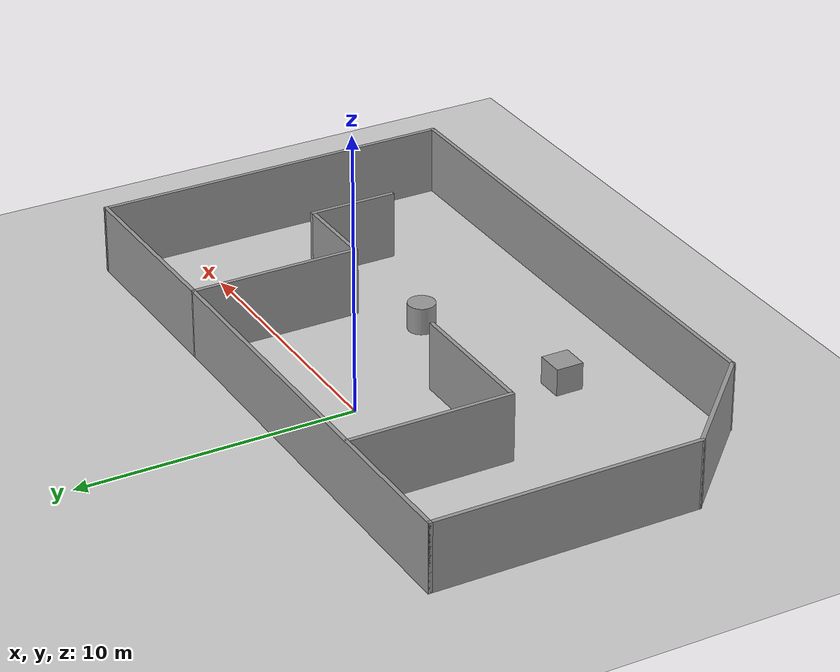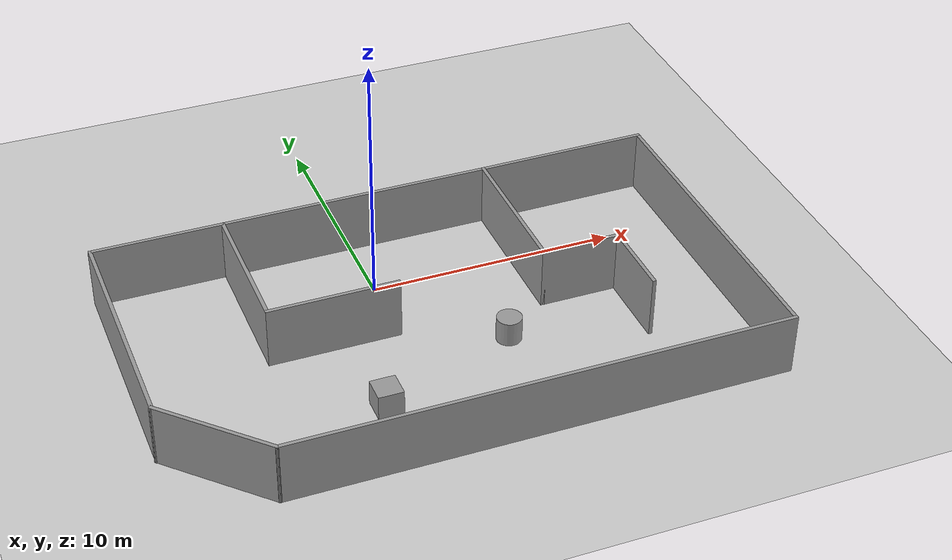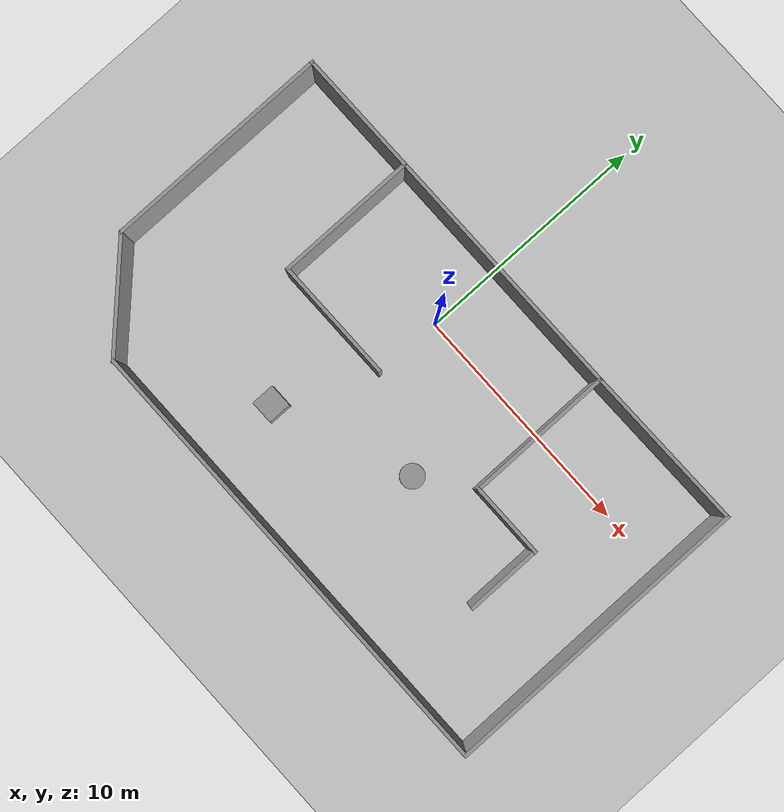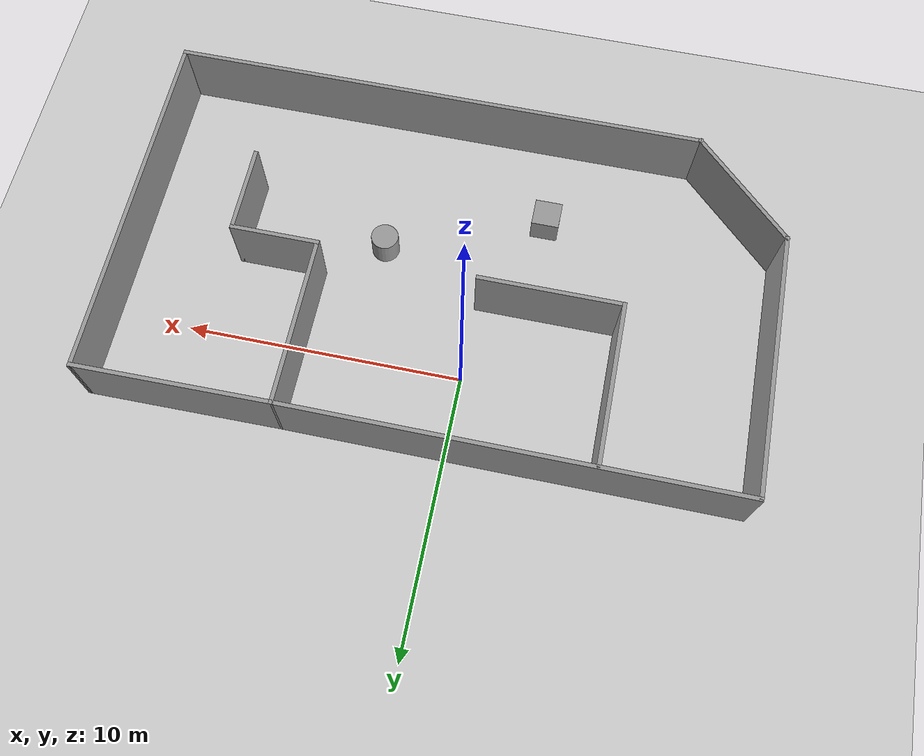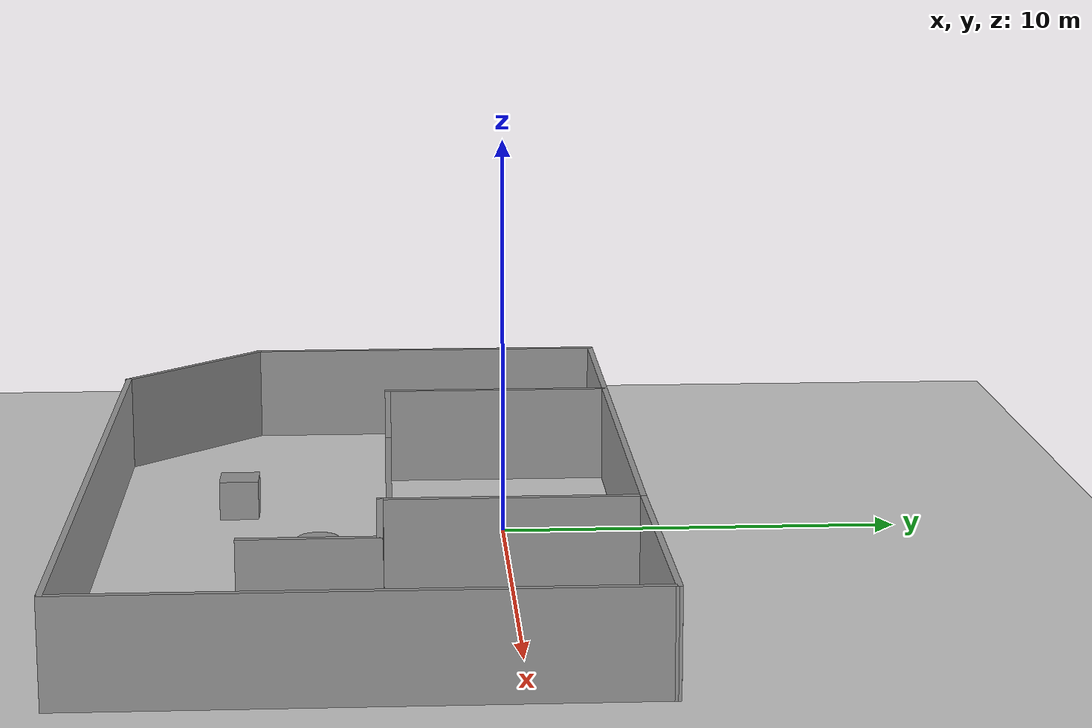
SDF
<sdf version="1.7">
 <world name="default">
  <light name="sun" type="directional">
   <pose>0 0 10 0 -0 0</pose>
   <diffuse>0.8 0.8 0.8 1</diffuse>
   <specular>0.2 0.2 0.2 1</specular>
   <attenuation>
    <range>1000</range>
    <constant>0.9</constant>
    <linear>0.01</linear>
    <quadratic>0.001</quadratic>
   </attenuation>
   <direction>-0.5 0.1 -0.9</direction>
   <spot><inner_angle>0</inner_angle><outer_angle>0</outer_angle><falloff>0</falloff></spot>
  </light>
  <model name="ground_plane">
   <static>1</static>
   <link name="link">
    <collision name="collision">
     <geometry><plane><normal>0 0 1</normal><size>100 100</size></plane></geometry>
     <surface>
      <contact><collide_bitmask>65535</collide_bitmask></contact>
      <friction><ode><mu>100</mu><mu2>50</mu2></ode></friction>
     </surface>
    </collision>
    <visual name="visual">
     <cast_shadows>0</cast_shadows>
     <geometry><plane><normal>0 0 1</normal><size>100 100</size></plane></geometry>
     <material>
      <script><uri>file://media/materials/scripts/gazebo.material</uri><name>Gazebo/Grey</name></script>
     </material>
    </visual>
   </link>
  </model>
  <gravity>0 0 -9.8</gravity>
  <magnetic_field>6e-06 2.3e-05 -4.2e-05</magnetic_field>
  <atmosphere type="adiabatic"/>
  <physics type="ode">
   <max_step_size>0.001</max_step_size>
   <real_time_factor>1</real_time_factor>
   <real_time_update_rate>1000</real_time_update_rate>
  </physics>
  <scene><ambient>0.4 0.4 0.4 1</ambient><background>0.7 0.7 0.7 1</background><shadows>1</shadows></scene>
  <audio><device>default</device></audio>
  <spherical_coordinates>
   <surface_model>EARTH_WGS84</surface_model>
   <latitude_deg>0</latitude_deg>
   <longitude_deg>0</longitude_deg>
   <elevation>0</elevation>
   <heading_deg>0</heading_deg>
  </spherical_coordinates>
  <model name="map">
   <pose>1.18371 -3.50456 0 0 -0 0</pose>
   <link name="Wall_0">
    <collision name="Wall_0_Collision">
     <geometry><box><size>16.25 0.15 2.5</size></box></geometry>
     <pose>0 0 1.25 0 -0 0</pose>
    </collision>
    <visual name="Wall_0_Visual">
     <pose>0 0 1.25 0 -0 0</pose>
     <geometry><box><size>16.25 0.15 2.5</size></box></geometry>
     <material>
      <script><uri>file://media/materials/scripts/gazebo.material</uri><name>Gazebo/Grey</name></script>
      <ambient>1 1 1 1</ambient>
     </material>
     <meta><layer>0</layer></meta>
    </visual>
    <pose>-3.44958 6.49462 0 0 -0 3.14159</pose>
   </link>
   <link name="Wall_1">
    <collision name="Wall_1_Collision">
     <geometry><box><size>9.75 0.15 2.5</size></box></geometry>
     <pose>0 0 1.25 0 -0 0</pose>
    </collision>
    <visual name="Wall_1_Visual">
     <pose>0 0 1.25 0 -0 0</pose>
     <geometry><box><size>9.75 0.15 2.5</size></box></geometry>
     <material>
      <script><uri>file://media/materials/scripts/gazebo.material</uri><name>Gazebo/Grey</name></script>
      <ambient>1 1 1 1</ambient>
     </material>
     <meta><layer>0</layer></meta>
    </visual>
    <pose>-11.4996 1.69462 0 0 -0 -1.5708</pose>
   </link>
   <link name="Wall_11">
    <collision name="Wall_11_Collision">
     <geometry><box><size>6 0.15 2.5</size></box></geometry>
     <pose>0 0 1.25 0 -0 0</pose>
    </collision>
    <visual name="Wall_11_Visual">
     <pose>0 0 1.25 0 -0 0</pose>
     <geometry><box><size>6 0.15 2.5</size></box></geometry>
     <material>
      <script><uri>file://media/materials/scripts/gazebo.material</uri><name>Gazebo/Grey</name></script>
      <ambient>1 1 1 1</ambient>
     </material>
     <meta><layer>0</layer></meta>
    </visual>
    <pose>-6.28618 3.5231 0 0 -0 -1.5708</pose>
   </link>
   <link name="Wall_12">
    <collision name="Wall_12_Collision">
     <geometry><box><size>5.25 0.15 2.5</size></box></geometry>
     <pose>0 0 1.25 0 -0 0</pose>
    </collision>
    <visual name="Wall_12_Visual">
     <pose>0 0 1.25 0 -0 0</pose>
     <geometry><box><size>5.25 0.15 2.5</size></box></geometry>
     <material>
      <script><uri>file://media/materials/scripts/gazebo.material</uri><name>Gazebo/Grey</name></script>
      <ambient>1 1 1 1</ambient>
     </material>
     <meta><layer>0</layer></meta>
    </visual>
    <pose>-3.73618 0.598097 0 0 -0 0</pose>
   </link>
   <link name="Wall_3">
    <collision name="Wall_3_Collision">
     <geometry><box><size>5 0.15 2.5</size></box></geometry>
     <pose>0 0 1.25 0 -0 0</pose>
    </collision>
    <visual name="Wall_3_Visual">
     <pose>0 0 1.25 0 -0 0</pose>
     <geometry><box><size>5 0.15 2.5</size></box></geometry>
     <material>
      <script><uri>file://media/materials/scripts/gazebo.material</uri><name>Gazebo/Grey</name></script>
      <ambient>1 1 1 1</ambient>
     </material>
     <meta><layer>0</layer></meta>
    </visual>
    <pose>-9.78485 -4.82011 0 0 -0 -0.785398</pose>
   </link>
   <link name="Wall_4">
    <collision name="Wall_4_Collision">
     <geometry><box><size>19.75 0.15 2.5</size></box></geometry>
     <pose>0 0 1.25 0 -0 0</pose>
    </collision>
    <visual name="Wall_4_Visual">
     <pose>0 0 1.25 0 -0 0</pose>
     <geometry><box><size>19.75 0.15 2.5</size></box></geometry>
     <material>
      <script><uri>file://media/materials/scripts/gazebo.material</uri><name>Gazebo/Grey</name></script>
      <ambient>1 1 1 1</ambient>
     </material>
     <meta><layer>0</layer></meta>
    </visual>
    <pose>1.72989 -6.53485 0 0 -0 0</pose>
   </link>
   <link name="Wall_5">
    <collision name="Wall_5_Collision">
     <geometry><box><size>13.25 0.15 2.5</size></box></geometry>
     <pose>0 0 1.25 0 -0 0</pose>
    </collision>
    <visual name="Wall_5_Visual">
     <pose>0 0 1.25 0 -0 0</pose>
     <geometry><box><size>13.25 0.15 2.5</size></box></geometry>
     <material>
      <script><uri>file://media/materials/scripts/gazebo.material</uri><name>Gazebo/Grey</name></script>
      <ambient>1 1 1 1</ambient>
     </material>
     <meta><layer>0</layer></meta>
    </visual>
    <pose>11.5299 0.015153 0 0 -0 1.5708</pose>
   </link>
   <link name="Wall_6">
    <collision name="Wall_6_Collision">
     <geometry><box><size>7.07983 0.15 2.5</size></box></geometry>
     <pose>0 0 1.25 0 -0 0</pose>
    </collision>
    <visual name="Wall_6_Visual">
     <pose>0 0 1.25 0 -0 0</pose>
     <geometry><box><size>7.07983 0.15 2.5</size></box></geometry>
     <material>
      <script><uri>file://media/materials/scripts/gazebo.material</uri><name>Gazebo/Grey</name></script>
      <ambient>1 1 1 1</ambient>
     </material>
     <meta><layer>0</layer></meta>
    </visual>
    <pose>8.06515 6.52989 0 0 -0 -3.13141</pose>
   </link>
   <link name="Wall_7">
    <collision name="Wall_7_Collision">
     <geometry><box><size>6.25 0.15 2.5</size></box></geometry>
     <pose>0 0 1.25 0 -0 0</pose>
    </collision>
    <visual name="Wall_7_Visual">
     <pose>0 0 1.25 0 -0 0</pose>
     <geometry><box><size>6.25 0.15 2.5</size></box></geometry>
     <material>
      <script><uri>file://media/materials/scripts/gazebo.material</uri><name>Gazebo/Grey</name></script>
      <ambient>1 1 1 1</ambient>
     </material>
     <meta><layer>0</layer></meta>
    </visual>
    <pose>4.60042 3.44462 0 0 -0 -1.5708</pose>
   </link>
   <link name="Wall_8">
    <collision name="Wall_8_Collision">
     <geometry><box><size>3.25 0.15 2.5</size></box></geometry>
     <pose>0 0 1.25 0 -0 0</pose>
    </collision>
    <visual name="Wall_8_Visual">
     <pose>0 0 1.25 0 -0 0</pose>
     <geometry><box><size>3.25 0.15 2.5</size></box></geometry>
     <material>
      <script><uri>file://media/materials/scripts/gazebo.material</uri><name>Gazebo/Grey</name></script>
      <ambient>1 1 1 1</ambient>
     </material>
     <meta><layer>0</layer></meta>
    </visual>
    <pose>6.15042 0.394621 0 0 -0 0</pose>
   </link>
   <link name="Wall_9">
    <collision name="Wall_9_Collision">
     <geometry><box><size>3.25 0.15 2.5</size></box></geometry>
     <pose>0 0 1.25 0 -0 0</pose>
    </collision>
    <visual name="Wall_9_Visual">
     <pose>0 0 1.25 0 -0 0</pose>
     <geometry><box><size>3.25 0.15 2.5</size></box></geometry>
     <material>
      <script><uri>file://media/materials/scripts/gazebo.material</uri><name>Gazebo/Grey</name></script>
      <ambient>1 1 1 1</ambient>
     </material>
     <meta><layer>0</layer></meta>
    </visual>
    <pose>7.70042 -1.15538 0 0 -0 -1.5708</pose>
   </link>
   <static>1</static>
  </model>
  <model name="unit_box">
   <pose>-1.87942 -6.7675 0.499995 -1e-05 -0 0</pose>
   <link name="link">
    <inertial>
     <mass>1</mass>
     <inertia>
      <ixx>0.166667</ixx>
      <ixy>0</ixy>
      <ixz>0</ixz>
      <iyy>0.166667</iyy>
      <iyz>0</iyz>
      <izz>0.166667</izz>
     </inertia>
    </inertial>
    <collision name="collision"><geometry><box><size>1 1 1</size></box></geometry></collision>
    <visual name="visual">
     <geometry><box><size>1 1 1</size></box></geometry>
     <material>
      <script><name>Gazebo/Grey</name><uri>file://media/materials/scripts/gazebo.material</uri></script>
     </material>
    </visual>
   </link>
  </model>
  <model name="unit_cylinder">
   <pose>3.78134 -4.60138 0.499997 3e-06 4e-06 -0</pose>
   <link name="link">
    <inertial>
     <mass>1</mass>
     <inertia><ixx>0.145833</ixx><ixy>0</ixy><ixz>0</ixz><iyy>0.145833</iyy><iyz>0</iyz><izz>0.125</izz></inertia>
    </inertial>
    <collision name="collision">
     <geometry><cylinder><radius>0.5</radius><length>1</length></cylinder></geometry>
    </collision>
    <visual name="visual">
     <geometry><cylinder><radius>0.5</radius><length>1</length></cylinder></geometry>
     <material>
      <script><name>Gazebo/Grey</name><uri>file://media/materials/scripts/gazebo.material</uri></script>
     </material>
    </visual>
   </link>
  </model>
 </world>
</sdf>
